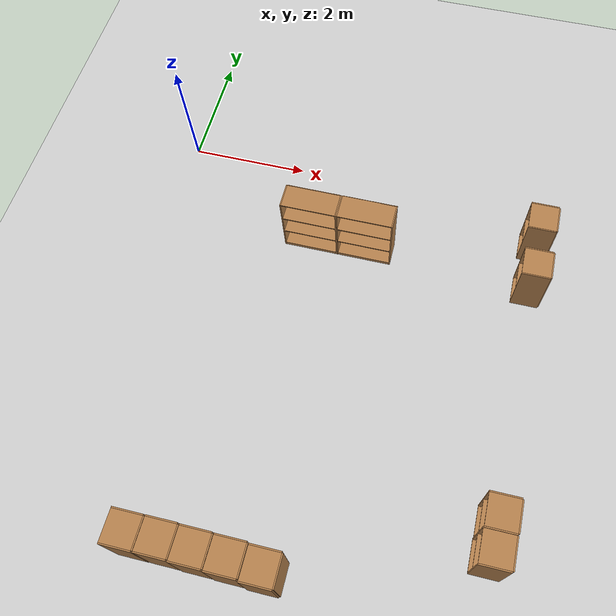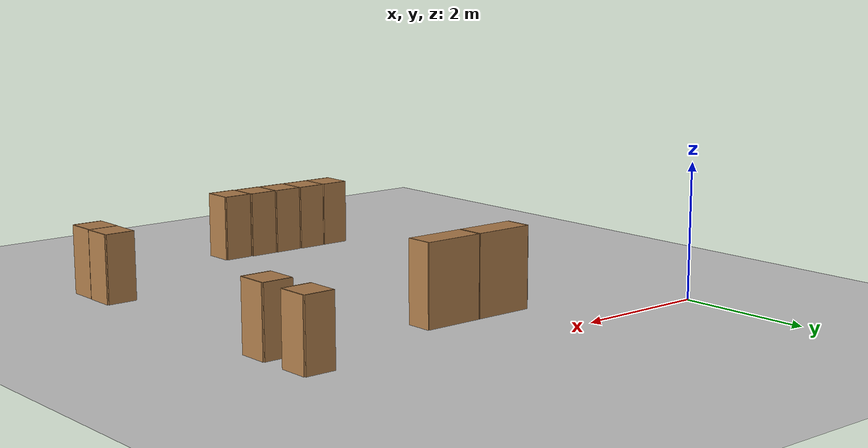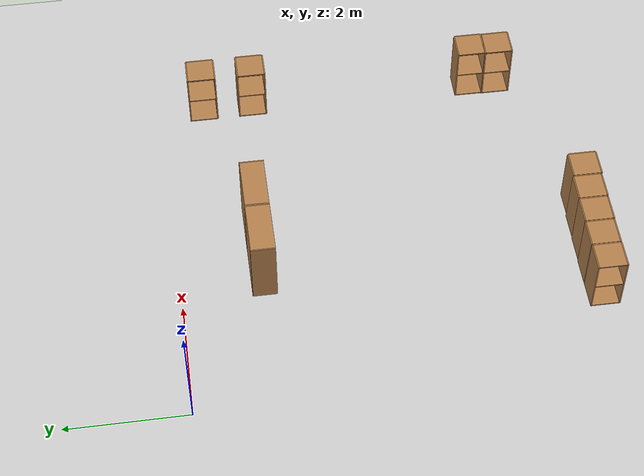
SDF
<sdf version="1.6">
 <world name="default">
  <model name="ground_plane">
   <static>1</static>
   <link name="link">
    <collision name="collision">
     <geometry><plane><normal>0 0 1</normal><size>100 100</size></plane></geometry>
     <surface><friction><ode><mu>100</mu><mu2>50</mu2></ode></friction></surface>
    </collision>
    <visual name="visual">
     <cast_shadows>0</cast_shadows>
     <geometry><plane><normal>0 0 1</normal><size>100 100</size></plane></geometry>
     <material>
      <script><uri>file://media/materials/scripts/gazebo.material</uri><name>Gazebo/Grey</name></script>
     </material>
    </visual>
   </link>
  </model>
  <model name="bookshelf_clone">
   <static>1</static>
   <link name="link">
    <inertial><mass>1</mass></inertial>
    <collision name="back">
     <pose>0 0.005 0.6 0 -0 0</pose>
     <geometry><box><size>0.9 0.01 1.2</size></box></geometry>
    </collision>
    <visual name="visual1">
     <pose>0 0.005 0.6 0 -0 0</pose>
     <geometry><box><size>0.9 0.01 1.2</size></box></geometry>
     <material>
      <script><uri>file://media/materials/scripts/gazebo.material</uri><name>Gazebo/Wood</name></script>
     </material>
    </visual>
    <collision name="left_side">
     <pose>0.45 -0.195 0.6 0 -0 0</pose>
     <geometry><box><size>0.02 0.4 1.2</size></box></geometry>
    </collision>
    <visual name="visual2">
     <pose>0.45 -0.195 0.6 0 -0 0</pose>
     <geometry><box><size>0.02 0.4 1.2</size></box></geometry>
     <material>
      <script><uri>file://media/materials/scripts/gazebo.material</uri><name>Gazebo/Wood</name></script>
     </material>
    </visual>
    <collision name="right_side">
     <pose>-0.45 -0.195 0.6 0 -0 0</pose>
     <geometry><box><size>0.02 0.4 1.2</size></box></geometry>
    </collision>
    <visual name="visual3">
     <pose>-0.45 -0.195 0.6 0 -0 0</pose>
     <geometry><box><size>0.02 0.4 1.2</size></box></geometry>
     <material>
      <script><uri>file://media/materials/scripts/gazebo.material</uri><name>Gazebo/Wood</name></script>
     </material>
    </visual>
    <collision name="bottom">
     <pose>0 -0.195 0.03 0 -0 0</pose>
     <geometry><box><size>0.88 0.4 0.06</size></box></geometry>
    </collision>
    <visual name="visual4">
     <pose>0 -0.195 0.03 0 -0 0</pose>
     <geometry><box><size>0.88 0.4 0.06</size></box></geometry>
     <material>
      <script><uri>file://media/materials/scripts/gazebo.material</uri><name>Gazebo/Wood</name></script>
     </material>
    </visual>
    <collision name="top">
     <pose>0 -0.195 1.19 0 -0 0</pose>
     <geometry><box><size>0.88 0.4 0.02</size></box></geometry>
    </collision>
    <visual name="visual5">
     <pose>0 -0.195 1.19 0 -0 0</pose>
     <geometry><box><size>0.88 0.4 0.02</size></box></geometry>
     <material>
      <script><uri>file://media/materials/scripts/gazebo.material</uri><name>Gazebo/Wood</name></script>
     </material>
    </visual>
    <collision name="low_shelf">
     <pose>0 -0.195 0.43 0 -0 0</pose>
     <geometry><box><size>0.88 0.4 0.02</size></box></geometry>
    </collision>
    <visual name="visual6">
     <pose>0 -0.195 0.43 0 -0 0</pose>
     <geometry><box><size>0.88 0.4 0.02</size></box></geometry>
     <material>
      <script><uri>file://media/materials/scripts/gazebo.material</uri><name>Gazebo/Wood</name></script>
     </material>
    </visual>
    <collision name="high_shelf">
     <pose>0 -0.195 0.8 0 -0 0</pose>
     <geometry><box><size>0.88 0.4 0.02</size></box></geometry>
    </collision>
    <visual name="visual7">
     <pose>0 -0.195 0.8 0 -0 0</pose>
     <geometry><box><size>0.88 0.4 0.02</size></box></geometry>
     <material>
      <script><uri>file://media/materials/scripts/gazebo.material</uri><name>Gazebo/Wood</name></script>
     </material>
    </visual>
   </link>
   <pose>2.56168 -1.14612 0 0 -0 0</pose>
  </model>
  <model name="cabinet_clone_3">
   <static>1</static>
   <link name="cabinet_bottom_plate">
    <inertial>
     <pose>0 0 -1 0 -0 0</pose>
     <inertia><ixx>2.05</ixx><ixy>0</ixy><ixz>0</ixz><iyy>2.05</iyy><iyz>0</iyz><izz>2.05</izz></inertia>
     <mass>25</mass>
    </inertial>
    <collision name="cabinet_bottom_plate_geom">
     <pose>0 0 0.01 0 -0 0</pose>
     <geometry><box><size>0.45 0.45 0.02</size></box></geometry>
    </collision>
    <visual name="cabinet_bottom_plate_geom_visual">
     <pose>0 0 0.01 0 -0 0</pose>
     <geometry><box><size>0.45 0.45 0.02</size></box></geometry>
     <material>
      <script><uri>file://media/materials/scripts/gazebo.material</uri><name>Gazebo/Wood</name></script>
     </material>
    </visual>
    <collision name="cabinet_bottom_plate_geom_cabinet_back_plate">
     <pose>0.235 0 0.51 0 -0 0</pose>
     <geometry><box><size>0.02 0.45 1.02</size></box></geometry>
    </collision>
    <visual name="cabinet_bottom_plate_geom_cabinet_back_plate_visual">
     <pose>0.235 0 0.51 0 -0 0</pose>
     <geometry><box><size>0.02 0.45 1.02</size></box></geometry>
     <material>
      <script><uri>file://media/materials/scripts/gazebo.material</uri><name>Gazebo/Wood</name></script>
     </material>
    </visual>
    <collision name="cabinet_bottom_plate_geom_cabinet_left_plate">
     <pose>0 0.235 0.51 0 -0 0</pose>
     <geometry><box><size>0.45 0.02 1.02</size></box></geometry>
    </collision>
    <visual name="cabinet_bottom_plate_geom_cabinet_left_plate_visual">
     <pose>0 0.235 0.51 0 -0 0</pose>
     <geometry><box><size>0.45 0.02 1.02</size></box></geometry>
     <material>
      <script><uri>file://media/materials/scripts/gazebo.material</uri><name>Gazebo/Wood</name></script>
     </material>
    </visual>
    <collision name="cabinet_bottom_plate_geom_cabinet_middle_plate">
     <pose>0 0 0.51 0 -0 0</pose>
     <geometry><box><size>0.45 0.45 0.02</size></box></geometry>
    </collision>
    <visual name="cabinet_bottom_plate_geom_cabinet_middle_plate_visual">
     <pose>0 0 0.51 0 -0 0</pose>
     <geometry><box><size>0.45 0.45 0.02</size></box></geometry>
     <material>
      <script><uri>file://media/materials/scripts/gazebo.material</uri><name>Gazebo/Wood</name></script>
     </material>
    </visual>
    <collision name="cabinet_bottom_plate_geom_cabinet_right_plate">
     <pose>0 -0.235 0.51 0 -0 0</pose>
     <geometry><box><size>0.45 0.02 1.02</size></box></geometry>
    </collision>
    <visual name="cabinet_bottom_plate_geom_cabinet_right_plate_visual">
     <pose>0 -0.235 0.51 0 -0 0</pose>
     <geometry><box><size>0.45 0.02 1.02</size></box></geometry>
     <material>
      <script><uri>file://media/materials/scripts/gazebo.material</uri><name>Gazebo/Wood</name></script>
     </material>
    </visual>
    <collision name="cabinet_bottom_plate_geom_cabinet_top_plate">
     <pose>0 0 1.01 0 -0 0</pose>
     <geometry><box><size>0.45 0.45 0.02</size></box></geometry>
    </collision>
    <visual name="cabinet_bottom_plate_geom_cabinet_top_plate_visual">
     <pose>0 0 1.01 0 -0 0</pose>
     <geometry><box><size>0.45 0.45 0.02</size></box></geometry>
     <material>
      <script><uri>file://media/materials/scripts/gazebo.material</uri><name>Gazebo/Wood</name></script>
     </material>
    </visual>
   </link>
   <pose>6.2445 -5.39249 0 0 -0 0</pose>
  </model>
  <model name="cabinet_clone_4">
   <static>1</static>
   <link name="cabinet_bottom_plate">
    <inertial>
     <pose>0 0 -1 0 -0 0</pose>
     <inertia><ixx>2.05</ixx><ixy>0</ixy><ixz>0</ixz><iyy>2.05</iyy><iyz>0</iyz><izz>2.05</izz></inertia>
     <mass>25</mass>
    </inertial>
    <collision name="cabinet_bottom_plate_geom">
     <pose>0 0 0.01 0 -0 0</pose>
     <geometry><box><size>0.45 0.45 0.02</size></box></geometry>
    </collision>
    <visual name="cabinet_bottom_plate_geom_visual">
     <pose>0 0 0.01 0 -0 0</pose>
     <geometry><box><size>0.45 0.45 0.02</size></box></geometry>
     <material>
      <script><uri>file://media/materials/scripts/gazebo.material</uri><name>Gazebo/Wood</name></script>
     </material>
    </visual>
    <collision name="cabinet_bottom_plate_geom_cabinet_back_plate">
     <pose>0.235 0 0.51 0 -0 0</pose>
     <geometry><box><size>0.02 0.45 1.02</size></box></geometry>
    </collision>
    <visual name="cabinet_bottom_plate_geom_cabinet_back_plate_visual">
     <pose>0.235 0 0.51 0 -0 0</pose>
     <geometry><box><size>0.02 0.45 1.02</size></box></geometry>
     <material>
      <script><uri>file://media/materials/scripts/gazebo.material</uri><name>Gazebo/Wood</name></script>
     </material>
    </visual>
    <collision name="cabinet_bottom_plate_geom_cabinet_left_plate">
     <pose>0 0.235 0.51 0 -0 0</pose>
     <geometry><box><size>0.45 0.02 1.02</size></box></geometry>
    </collision>
    <visual name="cabinet_bottom_plate_geom_cabinet_left_plate_visual">
     <pose>0 0.235 0.51 0 -0 0</pose>
     <geometry><box><size>0.45 0.02 1.02</size></box></geometry>
     <material>
      <script><uri>file://media/materials/scripts/gazebo.material</uri><name>Gazebo/Wood</name></script>
     </material>
    </visual>
    <collision name="cabinet_bottom_plate_geom_cabinet_middle_plate">
     <pose>0 0 0.51 0 -0 0</pose>
     <geometry><box><size>0.45 0.45 0.02</size></box></geometry>
    </collision>
    <visual name="cabinet_bottom_plate_geom_cabinet_middle_plate_visual">
     <pose>0 0 0.51 0 -0 0</pose>
     <geometry><box><size>0.45 0.45 0.02</size></box></geometry>
     <material>
      <script><uri>file://media/materials/scripts/gazebo.material</uri><name>Gazebo/Wood</name></script>
     </material>
    </visual>
    <collision name="cabinet_bottom_plate_geom_cabinet_right_plate">
     <pose>0 -0.235 0.51 0 -0 0</pose>
     <geometry><box><size>0.45 0.02 1.02</size></box></geometry>
    </collision>
    <visual name="cabinet_bottom_plate_geom_cabinet_right_plate_visual">
     <pose>0 -0.235 0.51 0 -0 0</pose>
     <geometry><box><size>0.45 0.02 1.02</size></box></geometry>
     <material>
      <script><uri>file://media/materials/scripts/gazebo.material</uri><name>Gazebo/Wood</name></script>
     </material>
    </visual>
    <collision name="cabinet_bottom_plate_geom_cabinet_top_plate">
     <pose>0 0 1.01 0 -0 0</pose>
     <geometry><box><size>0.45 0.45 0.02</size></box></geometry>
    </collision>
    <visual name="cabinet_bottom_plate_geom_cabinet_top_plate_visual">
     <pose>0 0 1.01 0 -0 0</pose>
     <geometry><box><size>0.45 0.45 0.02</size></box></geometry>
     <material>
      <script><uri>file://media/materials/scripts/gazebo.material</uri><name>Gazebo/Wood</name></script>
     </material>
    </visual>
   </link>
   <pose>6.23547 -5.86669 0 0 -0 0</pose>
  </model>
  <model name="bookshelf_clone_clone_0">
   <static>1</static>
   <link name="link">
    <inertial><mass>1</mass></inertial>
    <collision name="back">
     <pose>0 0.005 0.6 0 -0 0</pose>
     <geometry><box><size>0.9 0.01 1.2</size></box></geometry>
    </collision>
    <visual name="visual1">
     <pose>0 0.005 0.6 0 -0 0</pose>
     <geometry><box><size>0.9 0.01 1.2</size></box></geometry>
     <material>
      <script><uri>file://media/materials/scripts/gazebo.material</uri><name>Gazebo/Wood</name></script>
     </material>
    </visual>
    <collision name="left_side">
     <pose>0.45 -0.195 0.6 0 -0 0</pose>
     <geometry><box><size>0.02 0.4 1.2</size></box></geometry>
    </collision>
    <visual name="visual2">
     <pose>0.45 -0.195 0.6 0 -0 0</pose>
     <geometry><box><size>0.02 0.4 1.2</size></box></geometry>
     <material>
      <script><uri>file://media/materials/scripts/gazebo.material</uri><name>Gazebo/Wood</name></script>
     </material>
    </visual>
    <collision name="right_side">
     <pose>-0.45 -0.195 0.6 0 -0 0</pose>
     <geometry><box><size>0.02 0.4 1.2</size></box></geometry>
    </collision>
    <visual name="visual3">
     <pose>-0.45 -0.195 0.6 0 -0 0</pose>
     <geometry><box><size>0.02 0.4 1.2</size></box></geometry>
     <material>
      <script><uri>file://media/materials/scripts/gazebo.material</uri><name>Gazebo/Wood</name></script>
     </material>
    </visual>
    <collision name="bottom">
     <pose>0 -0.195 0.03 0 -0 0</pose>
     <geometry><box><size>0.88 0.4 0.06</size></box></geometry>
    </collision>
    <visual name="visual4">
     <pose>0 -0.195 0.03 0 -0 0</pose>
     <geometry><box><size>0.88 0.4 0.06</size></box></geometry>
     <material>
      <script><uri>file://media/materials/scripts/gazebo.material</uri><name>Gazebo/Wood</name></script>
     </material>
    </visual>
    <collision name="top">
     <pose>0 -0.195 1.19 0 -0 0</pose>
     <geometry><box><size>0.88 0.4 0.02</size></box></geometry>
    </collision>
    <visual name="visual5">
     <pose>0 -0.195 1.19 0 -0 0</pose>
     <geometry><box><size>0.88 0.4 0.02</size></box></geometry>
     <material>
      <script><uri>file://media/materials/scripts/gazebo.material</uri><name>Gazebo/Wood</name></script>
     </material>
    </visual>
    <collision name="low_shelf">
     <pose>0 -0.195 0.43 0 -0 0</pose>
     <geometry><box><size>0.88 0.4 0.02</size></box></geometry>
    </collision>
    <visual name="visual6">
     <pose>0 -0.195 0.43 0 -0 0</pose>
     <geometry><box><size>0.88 0.4 0.02</size></box></geometry>
     <material>
      <script><uri>file://media/materials/scripts/gazebo.material</uri><name>Gazebo/Wood</name></script>
     </material>
    </visual>
    <collision name="high_shelf">
     <pose>0 -0.195 0.8 0 -0 0</pose>
     <geometry><box><size>0.88 0.4 0.02</size></box></geometry>
    </collision>
    <visual name="visual7">
     <pose>0 -0.195 0.8 0 -0 0</pose>
     <geometry><box><size>0.88 0.4 0.02</size></box></geometry>
     <material>
      <script><uri>file://media/materials/scripts/gazebo.material</uri><name>Gazebo/Wood</name></script>
     </material>
    </visual>
   </link>
   <pose>3.47748 -1.14545 0 0 -0 0</pose>
  </model>
  <model name="cabinet_clone_3_clone">
   <static>1</static>
   <link name="cabinet_bottom_plate">
    <inertial>
     <pose>0 0 -1 0 -0 0</pose>
     <inertia><ixx>2.05</ixx><ixy>0</ixy><ixz>0</ixz><iyy>2.05</iyy><iyz>0</iyz><izz>2.05</izz></inertia>
     <mass>25</mass>
    </inertial>
    <collision name="cabinet_bottom_plate_geom">
     <pose>0 0 0.01 0 -0 0</pose>
     <geometry><box><size>0.45 0.45 0.02</size></box></geometry>
    </collision>
    <visual name="cabinet_bottom_plate_geom_visual">
     <pose>0 0 0.01 0 -0 0</pose>
     <geometry><box><size>0.45 0.45 0.02</size></box></geometry>
     <material>
      <script><uri>file://media/materials/scripts/gazebo.material</uri><name>Gazebo/Wood</name></script>
     </material>
    </visual>
    <collision name="cabinet_bottom_plate_geom_cabinet_back_plate">
     <pose>0.235 0 0.51 0 -0 0</pose>
     <geometry><box><size>0.02 0.45 1.02</size></box></geometry>
    </collision>
    <visual name="cabinet_bottom_plate_geom_cabinet_back_plate_visual">
     <pose>0.235 0 0.51 0 -0 0</pose>
     <geometry><box><size>0.02 0.45 1.02</size></box></geometry>
     <material>
      <script><uri>file://media/materials/scripts/gazebo.material</uri><name>Gazebo/Wood</name></script>
     </material>
    </visual>
    <collision name="cabinet_bottom_plate_geom_cabinet_left_plate">
     <pose>0 0.235 0.51 0 -0 0</pose>
     <geometry><box><size>0.45 0.02 1.02</size></box></geometry>
    </collision>
    <visual name="cabinet_bottom_plate_geom_cabinet_left_plate_visual">
     <pose>0 0.235 0.51 0 -0 0</pose>
     <geometry><box><size>0.45 0.02 1.02</size></box></geometry>
     <material>
      <script><uri>file://media/materials/scripts/gazebo.material</uri><name>Gazebo/Wood</name></script>
     </material>
    </visual>
    <collision name="cabinet_bottom_plate_geom_cabinet_middle_plate">
     <pose>0 0 0.51 0 -0 0</pose>
     <geometry><box><size>0.45 0.45 0.02</size></box></geometry>
    </collision>
    <visual name="cabinet_bottom_plate_geom_cabinet_middle_plate_visual">
     <pose>0 0 0.51 0 -0 0</pose>
     <geometry><box><size>0.45 0.45 0.02</size></box></geometry>
     <material>
      <script><uri>file://media/materials/scripts/gazebo.material</uri><name>Gazebo/Wood</name></script>
     </material>
    </visual>
    <collision name="cabinet_bottom_plate_geom_cabinet_right_plate">
     <pose>0 -0.235 0.51 0 -0 0</pose>
     <geometry><box><size>0.45 0.02 1.02</size></box></geometry>
    </collision>
    <visual name="cabinet_bottom_plate_geom_cabinet_right_plate_visual">
     <pose>0 -0.235 0.51 0 -0 0</pose>
     <geometry><box><size>0.45 0.02 1.02</size></box></geometry>
     <material>
      <script><uri>file://media/materials/scripts/gazebo.material</uri><name>Gazebo/Wood</name></script>
     </material>
    </visual>
    <collision name="cabinet_bottom_plate_geom_cabinet_top_plate">
     <pose>0 0 1.01 0 -0 0</pose>
     <geometry><box><size>0.45 0.45 0.02</size></box></geometry>
    </collision>
    <visual name="cabinet_bottom_plate_geom_cabinet_top_plate_visual">
     <pose>0 0 1.01 0 -0 0</pose>
     <geometry><box><size>0.45 0.45 0.02</size></box></geometry>
     <material>
      <script><uri>file://media/materials/scripts/gazebo.material</uri><name>Gazebo/Wood</name></script>
     </material>
    </visual>
   </link>
   <pose>1.41627 -6.73817 0 0 -0 0</pose>
  </model>
  <model name="cabinet_clone_3_clone_clone">
   <static>1</static>
   <link name="cabinet_bottom_plate">
    <inertial>
     <pose>0 0 -1 0 -0 0</pose>
     <inertia><ixx>2.05</ixx><ixy>0</ixy><ixz>0</ixz><iyy>2.05</iyy><iyz>0</iyz><izz>2.05</izz></inertia>
     <mass>25</mass>
    </inertial>
    <collision name="cabinet_bottom_plate_geom">
     <pose>0 0 0.01 0 -0 0</pose>
     <geometry><box><size>0.45 0.45 0.02</size></box></geometry>
    </collision>
    <visual name="cabinet_bottom_plate_geom_visual">
     <pose>0 0 0.01 0 -0 0</pose>
     <geometry><box><size>0.45 0.45 0.02</size></box></geometry>
     <material>
      <script><uri>file://media/materials/scripts/gazebo.material</uri><name>Gazebo/Wood</name></script>
     </material>
    </visual>
    <collision name="cabinet_bottom_plate_geom_cabinet_back_plate">
     <pose>0.235 0 0.51 0 -0 0</pose>
     <geometry><box><size>0.02 0.45 1.02</size></box></geometry>
    </collision>
    <visual name="cabinet_bottom_plate_geom_cabinet_back_plate_visual">
     <pose>0.235 0 0.51 0 -0 0</pose>
     <geometry><box><size>0.02 0.45 1.02</size></box></geometry>
     <material>
      <script><uri>file://media/materials/scripts/gazebo.material</uri><name>Gazebo/Wood</name></script>
     </material>
    </visual>
    <collision name="cabinet_bottom_plate_geom_cabinet_left_plate">
     <pose>0 0.235 0.51 0 -0 0</pose>
     <geometry><box><size>0.45 0.02 1.02</size></box></geometry>
    </collision>
    <visual name="cabinet_bottom_plate_geom_cabinet_left_plate_visual">
     <pose>0 0.235 0.51 0 -0 0</pose>
     <geometry><box><size>0.45 0.02 1.02</size></box></geometry>
     <material>
      <script><uri>file://media/materials/scripts/gazebo.material</uri><name>Gazebo/Wood</name></script>
     </material>
    </visual>
    <collision name="cabinet_bottom_plate_geom_cabinet_middle_plate">
     <pose>0 0 0.51 0 -0 0</pose>
     <geometry><box><size>0.45 0.45 0.02</size></box></geometry>
    </collision>
    <visual name="cabinet_bottom_plate_geom_cabinet_middle_plate_visual">
     <pose>0 0 0.51 0 -0 0</pose>
     <geometry><box><size>0.45 0.45 0.02</size></box></geometry>
     <material>
      <script><uri>file://media/materials/scripts/gazebo.material</uri><name>Gazebo/Wood</name></script>
     </material>
    </visual>
    <collision name="cabinet_bottom_plate_geom_cabinet_right_plate">
     <pose>0 -0.235 0.51 0 -0 0</pose>
     <geometry><box><size>0.45 0.02 1.02</size></box></geometry>
    </collision>
    <visual name="cabinet_bottom_plate_geom_cabinet_right_plate_visual">
     <pose>0 -0.235 0.51 0 -0 0</pose>
     <geometry><box><size>0.45 0.02 1.02</size></box></geometry>
     <material>
      <script><uri>file://media/materials/scripts/gazebo.material</uri><name>Gazebo/Wood</name></script>
     </material>
    </visual>
    <collision name="cabinet_bottom_plate_geom_cabinet_top_plate">
     <pose>0 0 1.01 0 -0 0</pose>
     <geometry><box><size>0.45 0.45 0.02</size></box></geometry>
    </collision>
    <visual name="cabinet_bottom_plate_geom_cabinet_top_plate_visual">
     <pose>0 0 1.01 0 -0 0</pose>
     <geometry><box><size>0.45 0.45 0.02</size></box></geometry>
     <material>
      <script><uri>file://media/materials/scripts/gazebo.material</uri><name>Gazebo/Wood</name></script>
     </material>
    </visual>
   </link>
   <pose>1.88986 -6.736 0 0 -0 0</pose>
  </model>
  <model name="cabinet_clone_3_clone_clone_0">
   <static>1</static>
   <link name="cabinet_bottom_plate">
    <inertial>
     <pose>0 0 -1 0 -0 0</pose>
     <inertia><ixx>2.05</ixx><ixy>0</ixy><ixz>0</ixz><iyy>2.05</iyy><iyz>0</iyz><izz>2.05</izz></inertia>
     <mass>25</mass>
    </inertial>
    <collision name="cabinet_bottom_plate_geom">
     <pose>0 0 0.01 0 -0 0</pose>
     <geometry><box><size>0.45 0.45 0.02</size></box></geometry>
    </collision>
    <visual name="cabinet_bottom_plate_geom_visual">
     <pose>0 0 0.01 0 -0 0</pose>
     <geometry><box><size>0.45 0.45 0.02</size></box></geometry>
     <material>
      <script><uri>file://media/materials/scripts/gazebo.material</uri><name>Gazebo/Wood</name></script>
     </material>
    </visual>
    <collision name="cabinet_bottom_plate_geom_cabinet_back_plate">
     <pose>0.235 0 0.51 0 -0 0</pose>
     <geometry><box><size>0.02 0.45 1.02</size></box></geometry>
    </collision>
    <visual name="cabinet_bottom_plate_geom_cabinet_back_plate_visual">
     <pose>0.235 0 0.51 0 -0 0</pose>
     <geometry><box><size>0.02 0.45 1.02</size></box></geometry>
     <material>
      <script><uri>file://media/materials/scripts/gazebo.material</uri><name>Gazebo/Wood</name></script>
     </material>
    </visual>
    <collision name="cabinet_bottom_plate_geom_cabinet_left_plate">
     <pose>0 0.235 0.51 0 -0 0</pose>
     <geometry><box><size>0.45 0.02 1.02</size></box></geometry>
    </collision>
    <visual name="cabinet_bottom_plate_geom_cabinet_left_plate_visual">
     <pose>0 0.235 0.51 0 -0 0</pose>
     <geometry><box><size>0.45 0.02 1.02</size></box></geometry>
     <material>
      <script><uri>file://media/materials/scripts/gazebo.material</uri><name>Gazebo/Wood</name></script>
     </material>
    </visual>
    <collision name="cabinet_bottom_plate_geom_cabinet_middle_plate">
     <pose>0 0 0.51 0 -0 0</pose>
     <geometry><box><size>0.45 0.45 0.02</size></box></geometry>
    </collision>
    <visual name="cabinet_bottom_plate_geom_cabinet_middle_plate_visual">
     <pose>0 0 0.51 0 -0 0</pose>
     <geometry><box><size>0.45 0.45 0.02</size></box></geometry>
     <material>
      <script><uri>file://media/materials/scripts/gazebo.material</uri><name>Gazebo/Wood</name></script>
     </material>
    </visual>
    <collision name="cabinet_bottom_plate_geom_cabinet_right_plate">
     <pose>0 -0.235 0.51 0 -0 0</pose>
     <geometry><box><size>0.45 0.02 1.02</size></box></geometry>
    </collision>
    <visual name="cabinet_bottom_plate_geom_cabinet_right_plate_visual">
     <pose>0 -0.235 0.51 0 -0 0</pose>
     <geometry><box><size>0.45 0.02 1.02</size></box></geometry>
     <material>
      <script><uri>file://media/materials/scripts/gazebo.material</uri><name>Gazebo/Wood</name></script>
     </material>
    </visual>
    <collision name="cabinet_bottom_plate_geom_cabinet_top_plate">
     <pose>0 0 1.01 0 -0 0</pose>
     <geometry><box><size>0.45 0.45 0.02</size></box></geometry>
    </collision>
    <visual name="cabinet_bottom_plate_geom_cabinet_top_plate_visual">
     <pose>0 0 1.01 0 -0 0</pose>
     <geometry><box><size>0.45 0.45 0.02</size></box></geometry>
     <material>
      <script><uri>file://media/materials/scripts/gazebo.material</uri><name>Gazebo/Wood</name></script>
     </material>
    </visual>
   </link>
   <pose>2.36497 -6.7435 0 0 -0 0</pose>
  </model>
  <model name="cabinet_clone_3_clone_clone_1">
   <static>1</static>
   <link name="cabinet_bottom_plate">
    <inertial>
     <pose>0 0 -1 0 -0 0</pose>
     <inertia><ixx>2.05</ixx><ixy>0</ixy><ixz>0</ixz><iyy>2.05</iyy><iyz>0</iyz><izz>2.05</izz></inertia>
     <mass>25</mass>
    </inertial>
    <collision name="cabinet_bottom_plate_geom">
     <pose>0 0 0.01 0 -0 0</pose>
     <geometry><box><size>0.45 0.45 0.02</size></box></geometry>
    </collision>
    <visual name="cabinet_bottom_plate_geom_visual">
     <pose>0 0 0.01 0 -0 0</pose>
     <geometry><box><size>0.45 0.45 0.02</size></box></geometry>
     <material>
      <script><uri>file://media/materials/scripts/gazebo.material</uri><name>Gazebo/Wood</name></script>
     </material>
    </visual>
    <collision name="cabinet_bottom_plate_geom_cabinet_back_plate">
     <pose>0.235 0 0.51 0 -0 0</pose>
     <geometry><box><size>0.02 0.45 1.02</size></box></geometry>
    </collision>
    <visual name="cabinet_bottom_plate_geom_cabinet_back_plate_visual">
     <pose>0.235 0 0.51 0 -0 0</pose>
     <geometry><box><size>0.02 0.45 1.02</size></box></geometry>
     <material>
      <script><uri>file://media/materials/scripts/gazebo.material</uri><name>Gazebo/Wood</name></script>
     </material>
    </visual>
    <collision name="cabinet_bottom_plate_geom_cabinet_left_plate">
     <pose>0 0.235 0.51 0 -0 0</pose>
     <geometry><box><size>0.45 0.02 1.02</size></box></geometry>
    </collision>
    <visual name="cabinet_bottom_plate_geom_cabinet_left_plate_visual">
     <pose>0 0.235 0.51 0 -0 0</pose>
     <geometry><box><size>0.45 0.02 1.02</size></box></geometry>
     <material>
      <script><uri>file://media/materials/scripts/gazebo.material</uri><name>Gazebo/Wood</name></script>
     </material>
    </visual>
    <collision name="cabinet_bottom_plate_geom_cabinet_middle_plate">
     <pose>0 0 0.51 0 -0 0</pose>
     <geometry><box><size>0.45 0.45 0.02</size></box></geometry>
    </collision>
    <visual name="cabinet_bottom_plate_geom_cabinet_middle_plate_visual">
     <pose>0 0 0.51 0 -0 0</pose>
     <geometry><box><size>0.45 0.45 0.02</size></box></geometry>
     <material>
      <script><uri>file://media/materials/scripts/gazebo.material</uri><name>Gazebo/Wood</name></script>
     </material>
    </visual>
    <collision name="cabinet_bottom_plate_geom_cabinet_right_plate">
     <pose>0 -0.235 0.51 0 -0 0</pose>
     <geometry><box><size>0.45 0.02 1.02</size></box></geometry>
    </collision>
    <visual name="cabinet_bottom_plate_geom_cabinet_right_plate_visual">
     <pose>0 -0.235 0.51 0 -0 0</pose>
     <geometry><box><size>0.45 0.02 1.02</size></box></geometry>
     <material>
      <script><uri>file://media/materials/scripts/gazebo.material</uri><name>Gazebo/Wood</name></script>
     </material>
    </visual>
    <collision name="cabinet_bottom_plate_geom_cabinet_top_plate">
     <pose>0 0 1.01 0 -0 0</pose>
     <geometry><box><size>0.45 0.45 0.02</size></box></geometry>
    </collision>
    <visual name="cabinet_bottom_plate_geom_cabinet_top_plate_visual">
     <pose>0 0 1.01 0 -0 0</pose>
     <geometry><box><size>0.45 0.45 0.02</size></box></geometry>
     <material>
      <script><uri>file://media/materials/scripts/gazebo.material</uri><name>Gazebo/Wood</name></script>
     </material>
    </visual>
   </link>
   <pose>2.84007 -6.75096 0 0 -0 0</pose>
  </model>
  <model name="cabinet_clone_3_clone_clone_2">
   <static>1</static>
   <link name="cabinet_bottom_plate">
    <inertial>
     <pose>0 0 -1 0 -0 0</pose>
     <inertia><ixx>2.05</ixx><ixy>0</ixy><ixz>0</ixz><iyy>2.05</iyy><iyz>0</iyz><izz>2.05</izz></inertia>
     <mass>25</mass>
    </inertial>
    <collision name="cabinet_bottom_plate_geom">
     <pose>0 0 0.01 0 -0 0</pose>
     <geometry><box><size>0.45 0.45 0.02</size></box></geometry>
    </collision>
    <visual name="cabinet_bottom_plate_geom_visual">
     <pose>0 0 0.01 0 -0 0</pose>
     <geometry><box><size>0.45 0.45 0.02</size></box></geometry>
     <material>
      <script><uri>file://media/materials/scripts/gazebo.material</uri><name>Gazebo/Wood</name></script>
     </material>
    </visual>
    <collision name="cabinet_bottom_plate_geom_cabinet_back_plate">
     <pose>0.235 0 0.51 0 -0 0</pose>
     <geometry><box><size>0.02 0.45 1.02</size></box></geometry>
    </collision>
    <visual name="cabinet_bottom_plate_geom_cabinet_back_plate_visual">
     <pose>0.235 0 0.51 0 -0 0</pose>
     <geometry><box><size>0.02 0.45 1.02</size></box></geometry>
     <material>
      <script><uri>file://media/materials/scripts/gazebo.material</uri><name>Gazebo/Wood</name></script>
     </material>
    </visual>
    <collision name="cabinet_bottom_plate_geom_cabinet_left_plate">
     <pose>0 0.235 0.51 0 -0 0</pose>
     <geometry><box><size>0.45 0.02 1.02</size></box></geometry>
    </collision>
    <visual name="cabinet_bottom_plate_geom_cabinet_left_plate_visual">
     <pose>0 0.235 0.51 0 -0 0</pose>
     <geometry><box><size>0.45 0.02 1.02</size></box></geometry>
     <material>
      <script><uri>file://media/materials/scripts/gazebo.material</uri><name>Gazebo/Wood</name></script>
     </material>
    </visual>
    <collision name="cabinet_bottom_plate_geom_cabinet_middle_plate">
     <pose>0 0 0.51 0 -0 0</pose>
     <geometry><box><size>0.45 0.45 0.02</size></box></geometry>
    </collision>
    <visual name="cabinet_bottom_plate_geom_cabinet_middle_plate_visual">
     <pose>0 0 0.51 0 -0 0</pose>
     <geometry><box><size>0.45 0.45 0.02</size></box></geometry>
     <material>
      <script><uri>file://media/materials/scripts/gazebo.material</uri><name>Gazebo/Wood</name></script>
     </material>
    </visual>
    <collision name="cabinet_bottom_plate_geom_cabinet_right_plate">
     <pose>0 -0.235 0.51 0 -0 0</pose>
     <geometry><box><size>0.45 0.02 1.02</size></box></geometry>
    </collision>
    <visual name="cabinet_bottom_plate_geom_cabinet_right_plate_visual">
     <pose>0 -0.235 0.51 0 -0 0</pose>
     <geometry><box><size>0.45 0.02 1.02</size></box></geometry>
     <material>
      <script><uri>file://media/materials/scripts/gazebo.material</uri><name>Gazebo/Wood</name></script>
     </material>
    </visual>
    <collision name="cabinet_bottom_plate_geom_cabinet_top_plate">
     <pose>0 0 1.01 0 -0 0</pose>
     <geometry><box><size>0.45 0.45 0.02</size></box></geometry>
    </collision>
    <visual name="cabinet_bottom_plate_geom_cabinet_top_plate_visual">
     <pose>0 0 1.01 0 -0 0</pose>
     <geometry><box><size>0.45 0.45 0.02</size></box></geometry>
     <material>
      <script><uri>file://media/materials/scripts/gazebo.material</uri><name>Gazebo/Wood</name></script>
     </material>
    </visual>
   </link>
   <pose>3.31671 -6.76807 0 0 -0 0</pose>
  </model>
  <model name="cabinet_clone_3_clone_0">
   <static>1</static>
   <link name="cabinet_bottom_plate">
    <inertial>
     <pose>0 0 -1 0 -0 0</pose>
     <inertia><ixx>2.05</ixx><ixy>0</ixy><ixz>0</ixz><iyy>2.05</iyy><iyz>0</iyz><izz>2.05</izz></inertia>
     <mass>25</mass>
    </inertial>
    <collision name="cabinet_bottom_plate_geom">
     <pose>0 0 0.01 0 -0 0</pose>
     <geometry><box><size>0.45 0.45 0.02</size></box></geometry>
    </collision>
    <visual name="cabinet_bottom_plate_geom_visual">
     <pose>0 0 0.01 0 -0 0</pose>
     <geometry><box><size>0.45 0.45 0.02</size></box></geometry>
     <material>
      <script><uri>file://media/materials/scripts/gazebo.material</uri><name>Gazebo/Wood</name></script>
     </material>
    </visual>
    <collision name="cabinet_bottom_plate_geom_cabinet_back_plate">
     <pose>0.235 0 0.51 0 -0 0</pose>
     <geometry><box><size>0.02 0.45 1.02</size></box></geometry>
    </collision>
    <visual name="cabinet_bottom_plate_geom_cabinet_back_plate_visual">
     <pose>0.235 0 0.51 0 -0 0</pose>
     <geometry><box><size>0.02 0.45 1.02</size></box></geometry>
     <material>
      <script><uri>file://media/materials/scripts/gazebo.material</uri><name>Gazebo/Wood</name></script>
     </material>
    </visual>
    <collision name="cabinet_bottom_plate_geom_cabinet_left_plate">
     <pose>0 0.235 0.51 0 -0 0</pose>
     <geometry><box><size>0.45 0.02 1.02</size></box></geometry>
    </collision>
    <visual name="cabinet_bottom_plate_geom_cabinet_left_plate_visual">
     <pose>0 0.235 0.51 0 -0 0</pose>
     <geometry><box><size>0.45 0.02 1.02</size></box></geometry>
     <material>
      <script><uri>file://media/materials/scripts/gazebo.material</uri><name>Gazebo/Wood</name></script>
     </material>
    </visual>
    <collision name="cabinet_bottom_plate_geom_cabinet_middle_plate">
     <pose>0 0 0.51 0 -0 0</pose>
     <geometry><box><size>0.45 0.45 0.02</size></box></geometry>
    </collision>
    <visual name="cabinet_bottom_plate_geom_cabinet_middle_plate_visual">
     <pose>0 0 0.51 0 -0 0</pose>
     <geometry><box><size>0.45 0.45 0.02</size></box></geometry>
     <material>
      <script><uri>file://media/materials/scripts/gazebo.material</uri><name>Gazebo/Wood</name></script>
     </material>
    </visual>
    <collision name="cabinet_bottom_plate_geom_cabinet_right_plate">
     <pose>0 -0.235 0.51 0 -0 0</pose>
     <geometry><box><size>0.45 0.02 1.02</size></box></geometry>
    </collision>
    <visual name="cabinet_bottom_plate_geom_cabinet_right_plate_visual">
     <pose>0 -0.235 0.51 0 -0 0</pose>
     <geometry><box><size>0.45 0.02 1.02</size></box></geometry>
     <material>
      <script><uri>file://media/materials/scripts/gazebo.material</uri><name>Gazebo/Wood</name></script>
     </material>
    </visual>
    <collision name="cabinet_bottom_plate_geom_cabinet_top_plate">
     <pose>0 0 1.01 0 -0 0</pose>
     <geometry><box><size>0.45 0.45 0.02</size></box></geometry>
    </collision>
    <visual name="cabinet_bottom_plate_geom_cabinet_top_plate_visual">
     <pose>0 0 1.01 0 -0 0</pose>
     <geometry><box><size>0.45 0.45 0.02</size></box></geometry>
     <material>
      <script><uri>file://media/materials/scripts/gazebo.material</uri><name>Gazebo/Wood</name></script>
     </material>
    </visual>
   </link>
   <pose>6.24897 -1.54069 0 0 -0 0</pose>
  </model>
  <model name="cabinet_clone_3_clone_1">
   <static>1</static>
   <link name="cabinet_bottom_plate">
    <inertial>
     <pose>0 0 -1 0 -0 0</pose>
     <inertia><ixx>2.05</ixx><ixy>0</ixy><ixz>0</ixz><iyy>2.05</iyy><iyz>0</iyz><izz>2.05</izz></inertia>
     <mass>25</mass>
    </inertial>
    <collision name="cabinet_bottom_plate_geom">
     <pose>0 0 0.01 0 -0 0</pose>
     <geometry><box><size>0.45 0.45 0.02</size></box></geometry>
    </collision>
    <visual name="cabinet_bottom_plate_geom_visual">
     <pose>0 0 0.01 0 -0 0</pose>
     <geometry><box><size>0.45 0.45 0.02</size></box></geometry>
     <material>
      <script><uri>file://media/materials/scripts/gazebo.material</uri><name>Gazebo/Wood</name></script>
     </material>
    </visual>
    <collision name="cabinet_bottom_plate_geom_cabinet_back_plate">
     <pose>0.235 0 0.51 0 -0 0</pose>
     <geometry><box><size>0.02 0.45 1.02</size></box></geometry>
    </collision>
    <visual name="cabinet_bottom_plate_geom_cabinet_back_plate_visual">
     <pose>0.235 0 0.51 0 -0 0</pose>
     <geometry><box><size>0.02 0.45 1.02</size></box></geometry>
     <material>
      <script><uri>file://media/materials/scripts/gazebo.material</uri><name>Gazebo/Wood</name></script>
     </material>
    </visual>
    <collision name="cabinet_bottom_plate_geom_cabinet_left_plate">
     <pose>0 0.235 0.51 0 -0 0</pose>
     <geometry><box><size>0.45 0.02 1.02</size></box></geometry>
    </collision>
    <visual name="cabinet_bottom_plate_geom_cabinet_left_plate_visual">
     <pose>0 0.235 0.51 0 -0 0</pose>
     <geometry><box><size>0.45 0.02 1.02</size></box></geometry>
     <material>
      <script><uri>file://media/materials/scripts/gazebo.material</uri><name>Gazebo/Wood</name></script>
     </material>
    </visual>
    <collision name="cabinet_bottom_plate_geom_cabinet_middle_plate">
     <pose>0 0 0.51 0 -0 0</pose>
     <geometry><box><size>0.45 0.45 0.02</size></box></geometry>
    </collision>
    <visual name="cabinet_bottom_plate_geom_cabinet_middle_plate_visual">
     <pose>0 0 0.51 0 -0 0</pose>
     <geometry><box><size>0.45 0.45 0.02</size></box></geometry>
     <material>
      <script><uri>file://media/materials/scripts/gazebo.material</uri><name>Gazebo/Wood</name></script>
     </material>
    </visual>
    <collision name="cabinet_bottom_plate_geom_cabinet_right_plate">
     <pose>0 -0.235 0.51 0 -0 0</pose>
     <geometry><box><size>0.45 0.02 1.02</size></box></geometry>
    </collision>
    <visual name="cabinet_bottom_plate_geom_cabinet_right_plate_visual">
     <pose>0 -0.235 0.51 0 -0 0</pose>
     <geometry><box><size>0.45 0.02 1.02</size></box></geometry>
     <material>
      <script><uri>file://media/materials/scripts/gazebo.material</uri><name>Gazebo/Wood</name></script>
     </material>
    </visual>
    <collision name="cabinet_bottom_plate_geom_cabinet_top_plate">
     <pose>0 0 1.01 0 -0 0</pose>
     <geometry><box><size>0.45 0.45 0.02</size></box></geometry>
    </collision>
    <visual name="cabinet_bottom_plate_geom_cabinet_top_plate_visual">
     <pose>0 0 1.01 0 -0 0</pose>
     <geometry><box><size>0.45 0.45 0.02</size></box></geometry>
     <material>
      <script><uri>file://media/materials/scripts/gazebo.material</uri><name>Gazebo/Wood</name></script>
     </material>
    </visual>
   </link>
   <pose>6.24554 -0.682911 0 0 -0 0</pose>
  </model>
 </world>
</sdf>
